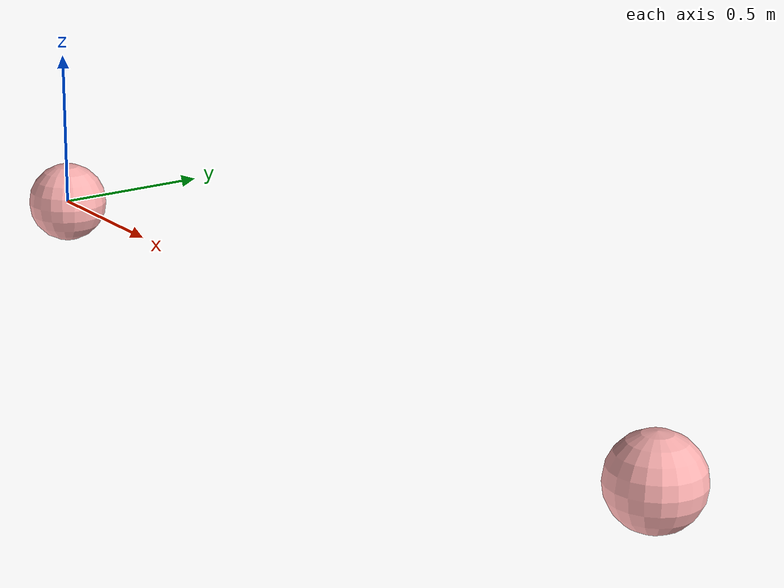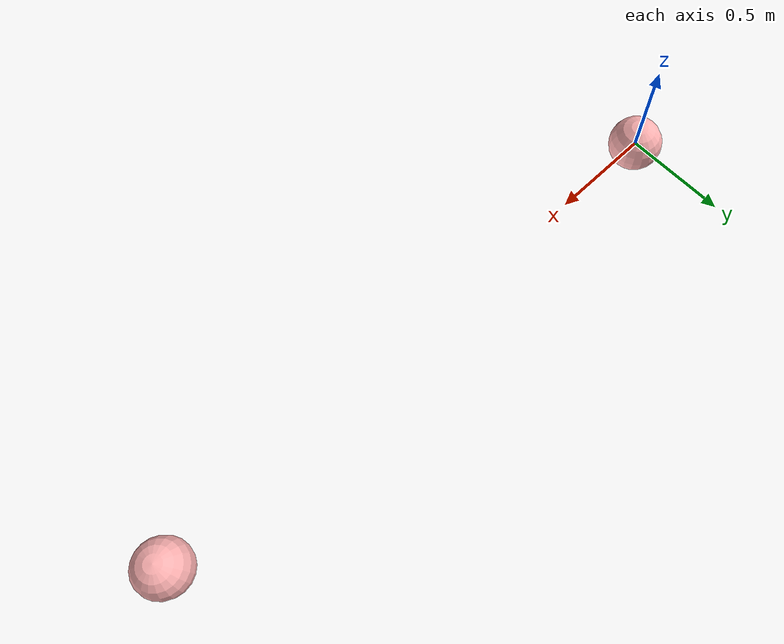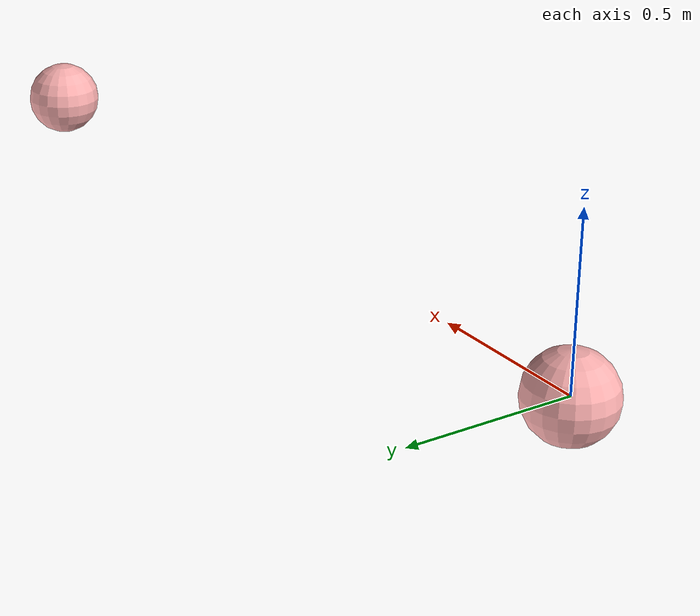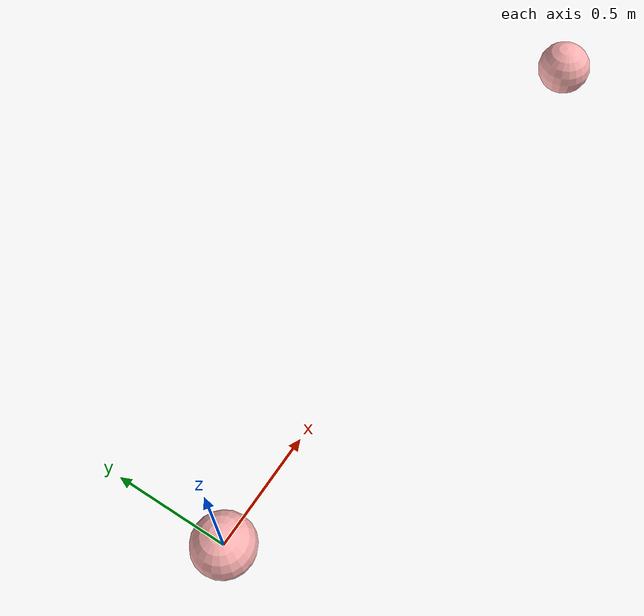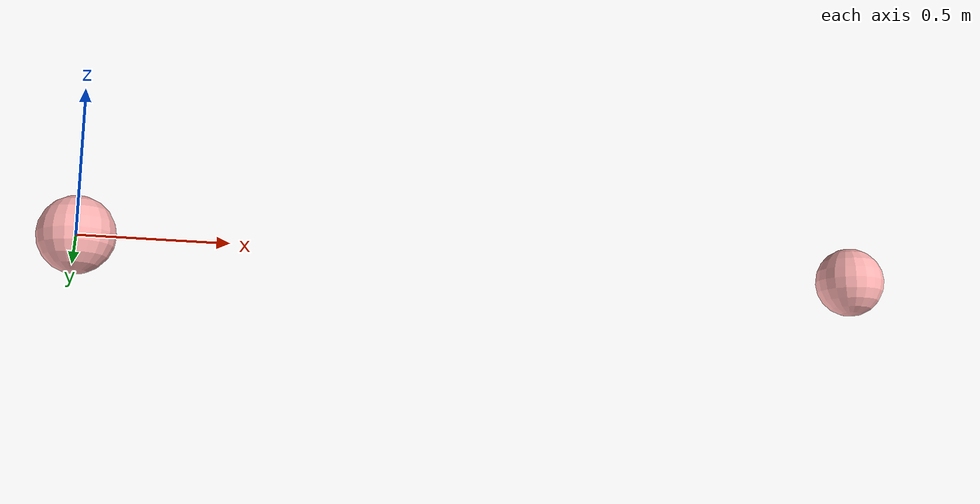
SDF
<?xml version='1.0'?>
<sdf version='1.6'>
  <model name='unit_sphere'>
    <link name='link'>
      <inertial>
        <mass>0.0172675</mass>
        <inertia>
          <ixx>0.00011536</ixx>
          <ixy>0</ixy>
          <ixz>0</ixz>
          <iyy>0.00011536</iyy>
          <iyz>0</iyz>
          <izz>0.00011536</izz>
        </inertia>
        <pose frame=''>0 0 0 0 -0 0</pose>
      </inertial>
      <self_collide>0</self_collide>
      <enable_wind>0</enable_wind>
      <kinematic>0</kinematic>
      <pose frame=''>0 0 0 0 -0 0</pose>
      <gravity>1</gravity>
      <visual name='visual'>
        <geometry>
          <sphere>
            <radius>0.129236</radius>
          </sphere>
        </geometry>
        <material>
          <script>
            <name>Gazebo/Grey</name>
            <uri>file://media/materials/scripts/gazebo.material</uri>
          </script>
          <ambient>1 0 0 0</ambient>
          <shader type='vertex'>
            <normal_map>__default__</normal_map>
          </shader>
          <diffuse>1 0.7 0.7 1</diffuse>
          <specular>1 0.01 0.01 1</specular>
          <emissive>0 0 0 1</emissive>
        </material>
        <pose frame=''>0 0 0 0 -0 0</pose>
        <transparency>0</transparency>
        <cast_shadows>1</cast_shadows>
      </visual>
      <collision name='collision'>
        <laser_retro>0</laser_retro>
        <max_contacts>9</max_contacts>
        <pose frame=''>0 0 0 0 -0 0</pose>
        <geometry>
          <sphere>
            <radius>0.129236</radius>
          </sphere>
        </geometry>
        <surface>
          <friction>
            <ode>
              <mu>1</mu>
              <mu2>1</mu2>
              <fdir1>0 0 0</fdir1>
              <slip1>0</slip1>
              <slip2>0</slip2>
            </ode>
            <torsional>
              <coefficient>1</coefficient>
              <patch_radius>0</patch_radius>
              <surface_radius>0</surface_radius>
              <use_patch_radius>1</use_patch_radius>
              <ode>
                <slip>0</slip>
              </ode>
            </torsional>
          </friction>
          <bounce>
            <restitution_coefficient>0</restitution_coefficient>
            <threshold>1e+06</threshold>
          </bounce>
          <contact>
            <collide_without_contact>0</collide_without_contact>
            <collide_without_contact_bitmask>1</collide_without_contact_bitmask>
            <collide_bitmask>1</collide_bitmask>
            <ode>
              <soft_cfm>0</soft_cfm>
              <soft_erp>0.2</soft_erp>
              <kp>1e+13</kp>
              <kd>1</kd>
              <max_vel>0.01</max_vel>
              <min_depth>0</min_depth>
            </ode>
            <bullet>
              <split_impulse>1</split_impulse>
              <split_impulse_penetration_threshold>-0.01</split_impulse_penetration_threshold>
              <soft_cfm>0</soft_cfm>
              <soft_erp>0.2</soft_erp>
              <kp>1e+13</kp>
              <kd>1</kd>
            </bullet>
          </contact>
        </surface>
      </collision>
    </link>
    <model name='unit_sphere'>
      <link name='link'>
        <inertial>
          <mass>0.0172675</mass>
          <inertia>
            <ixx>0.00011536</ixx>
            <ixy>0</ixy>
            <ixz>0</ixz>
            <iyy>0.00011536</iyy>
            <iyz>0</iyz>
            <izz>0.00011536</izz>
          </inertia>
          <pose frame=''>0 0 0 0 -0 0</pose>
        </inertial>
        <self_collide>0</self_collide>
        <enable_wind>0</enable_wind>
        <kinematic>0</kinematic>
        <pose frame=''>0 0 0 0 -0 0</pose>
        <gravity>1</gravity>
        <visual name='visual'>
          <geometry>
            <sphere>
              <radius>0.129236</radius>
            </sphere>
          </geometry>
          <material>
            <script>
              <name>Gazebo/Grey</name>
              <uri>file://media/materials/scripts/gazebo.material</uri>
            </script>
            <ambient>1 0 0 0</ambient>
            <shader type='vertex'>
              <normal_map>__default__</normal_map>
            </shader>
            <diffuse>1 0.7 0.7 1</diffuse>
            <specular>1 0.01 0.01 1</specular>
            <emissive>0 0 0 1</emissive>
          </material>
          <pose frame=''>0 0 0 0 -0 0</pose>
          <transparency>0</transparency>
          <cast_shadows>1</cast_shadows>
        </visual>
        <collision name='collision'>
          <laser_retro>0</laser_retro>
          <max_contacts>9</max_contacts>
          <pose frame=''>0 0 0 0 -0 0</pose>
          <geometry>
            <sphere>
              <radius>0.129236</radius>
            </sphere>
          </geometry>
          <surface>
            <friction>
              <ode>
                <mu>1</mu>
                <mu2>1</mu2>
                <fdir1>0 0 0</fdir1>
                <slip1>0</slip1>
                <slip2>0</slip2>
              </ode>
              <torsional>
                <coefficient>1</coefficient>
                <patch_radius>0</patch_radius>
                <surface_radius>0</surface_radius>
                <use_patch_radius>1</use_patch_radius>
                <ode>
                  <slip>0</slip>
                </ode>
              </torsional>
            </friction>
            <bounce>
              <restitution_coefficient>0</restitution_coefficient>
              <threshold>1e+06</threshold>
            </bounce>
            <contact>
              <collide_without_contact>0</collide_without_contact>
              <collide_without_contact_bitmask>1</collide_without_contact_bitmask>
              <collide_bitmask>1</collide_bitmask>
              <ode>
                <soft_cfm>0</soft_cfm>
                <soft_erp>0.2</soft_erp>
                <kp>1e+13</kp>
                <kd>1</kd>
                <max_vel>0.01</max_vel>
                <min_depth>0</min_depth>
              </ode>
              <bullet>
                <split_impulse>1</split_impulse>
                <split_impulse_penetration_threshold>-0.01</split_impulse_penetration_threshold>
                <soft_cfm>0</soft_cfm>
                <soft_erp>0.2</soft_erp>
                <kp>1e+13</kp>
                <kd>1</kd>
              </bullet>
            </contact>
          </surface>
        </collision>
      </link>
      <static>0</static>
      <allow_auto_disable>1</allow_auto_disable>
      <pose frame=''>2.86058 0.021482 0 0 -0 0</pose>
    </model>
    <static>0</static>
    <allow_auto_disable>1</allow_auto_disable>
  </model>
</sdf>
